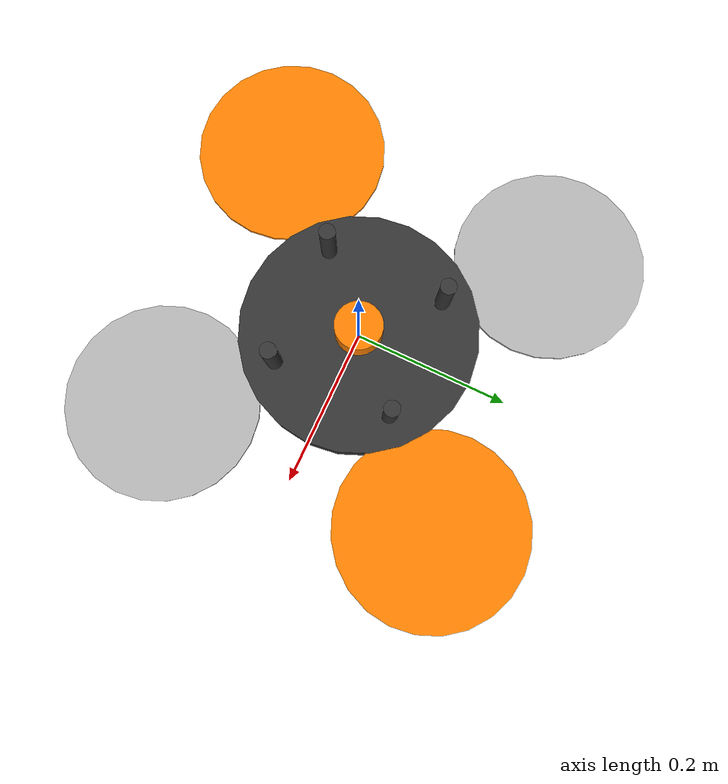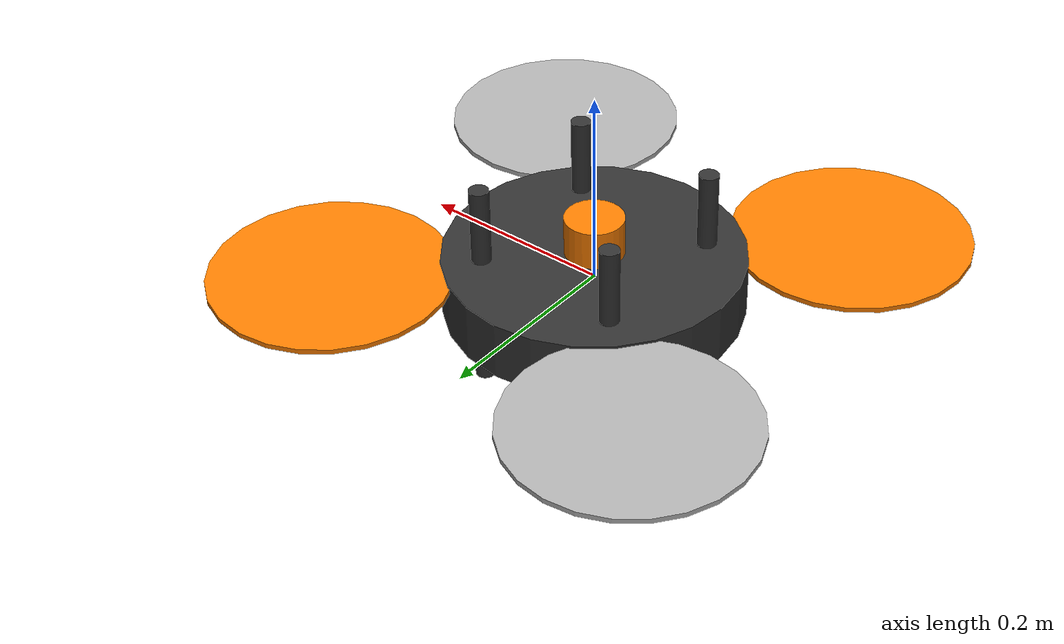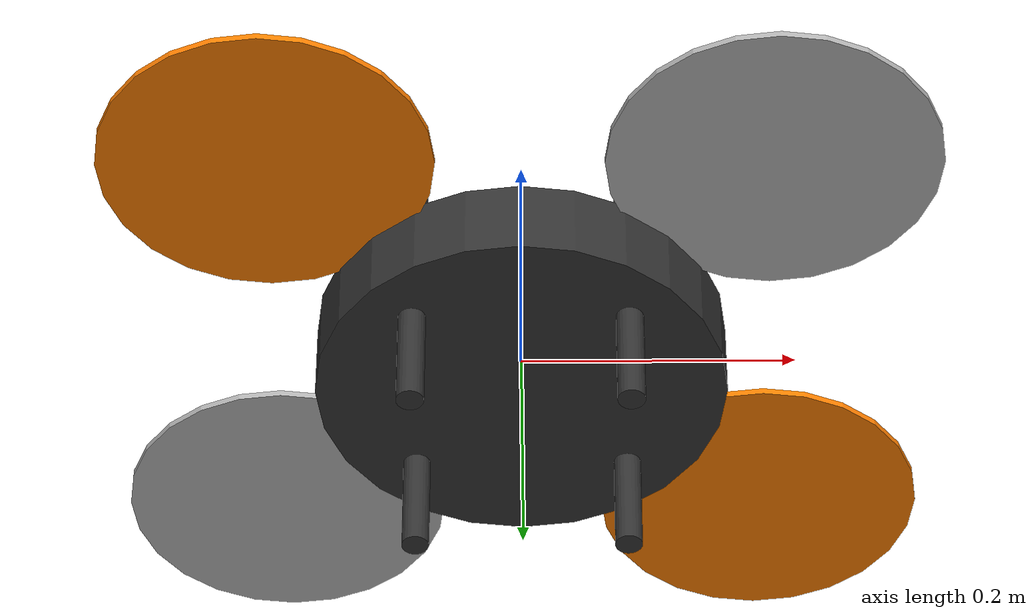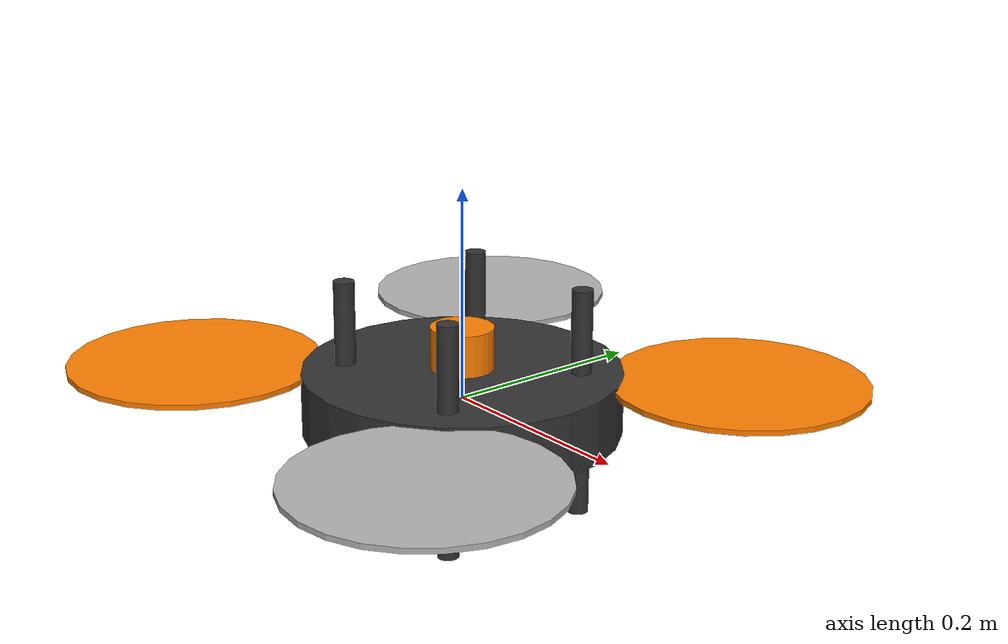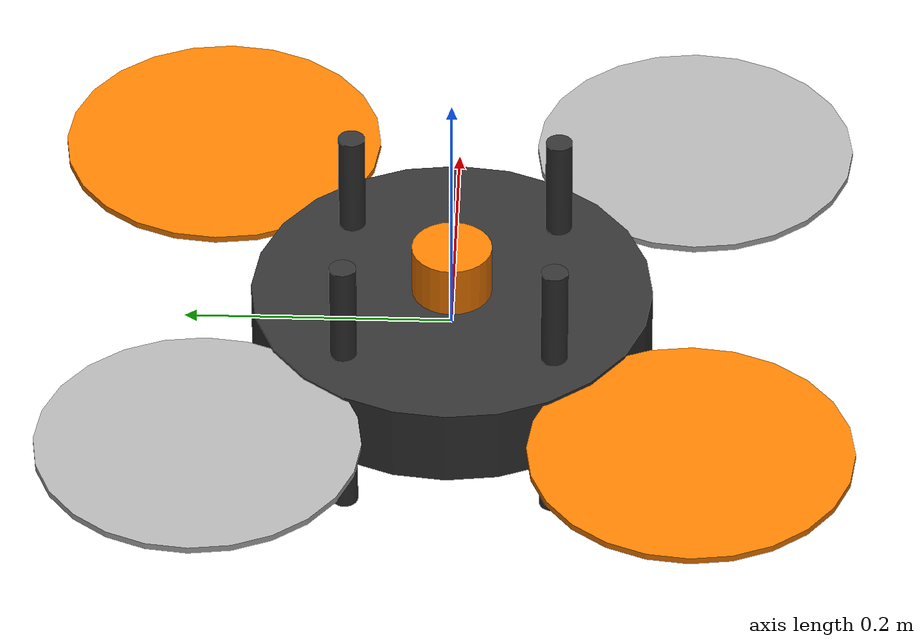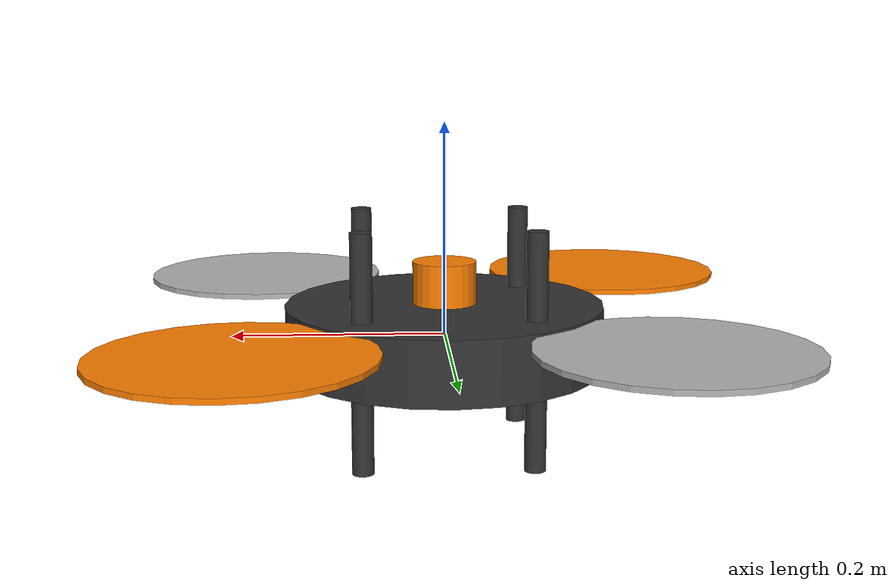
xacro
<?xml version="1.0"?>
<robot name="quadrotor" xmlns:xacro="http://www.ros.org/wiki/xacro">

  <!-- ======================================================
       PROPERTIES
  ====================================================== -->
  <xacro:property name="body_mass"   value="1.5"/>
  <xacro:property name="body_radius" value="0.15"/>
  <xacro:property name="body_length" value="0.06"/>

  <xacro:property name="arm_mass"    value="0.05"/>
  <xacro:property name="arm_length"  value="0.22"/>
  <xacro:property name="arm_radius"  value="0.01"/>

  <xacro:property name="rotor_mass"  value="0.01"/>
  <xacro:property name="rotor_radius" value="0.12"/>

  <!-- ======================================================
       MATERIALS
  ====================================================== -->
  <material name="dark_grey">
    <color rgba="0.2 0.2 0.2 1.0"/>
  </material>
  <material name="orange">
    <color rgba="1.0 0.5 0.0 1.0"/>
  </material>
  <material name="light_grey">
    <color rgba="0.7 0.7 0.7 1.0"/>
  </material>

  <!-- ======================================================
       MACROS
  ====================================================== -->

  <!-- Rotor macro -->
  <xacro:macro name="rotor" params="name x y z color">
    <link name="${name}">
      <visual>
        <origin xyz="0 0 0" rpy="0 0 0"/>
        <geometry>
          <cylinder radius="${rotor_radius}" length="0.005"/>
        </geometry>
        <material name="${color}"/>
      </visual>
      <collision>
        <origin xyz="0 0 0" rpy="0 0 0"/>
        <geometry>
          <cylinder radius="${rotor_radius}" length="0.005"/>
        </geometry>
      </collision>
      <inertial>
        <mass value="${rotor_mass}"/>
        <inertia ixx="0.0001" ixy="0" ixz="0"
                 iyy="0.0001" iyz="0"
                 izz="0.0002"/>
      </inertial>
    </link>
    <joint name="${name}_joint" type="fixed">
      <parent link="base_link"/>
      <child  link="${name}"/>
      <origin xyz="${x} ${y} ${z}" rpy="0 0 0"/>
    </joint>
  </xacro:macro>

  <!-- Arm macro -->
  <xacro:macro name="arm" params="name roll pitch yaw">
    <link name="${name}">
      <visual>
        <origin xyz="${arm_length/2} 0 0" rpy="0 0 0"/>
        <geometry>
          <cylinder radius="${arm_radius}" length="${arm_length}"/>
        </geometry>
        <material name="dark_grey"/>
      </visual>
      <inertial>
        <mass value="${arm_mass}"/>
        <inertia ixx="0.00001" ixy="0" ixz="0"
                 iyy="0.0001"  iyz="0"
                 izz="0.0001"/>
      </inertial>
    </link>
    <joint name="${name}_joint" type="fixed">
      <parent link="base_link"/>
      <child  link="${name}"/>
      <origin xyz="0 0 0" rpy="${roll} ${pitch} ${yaw}"/>
    </joint>
  </xacro:macro>

  <!-- ======================================================
       BASE LINK (drone body)
  ====================================================== -->
  <link name="base_link">
    <visual>
      <origin xyz="0 0 0" rpy="0 0 0"/>
      <geometry>
        <cylinder radius="${body_radius}" length="${body_length}"/>
      </geometry>
      <material name="dark_grey"/>
    </visual>
    <collision>
      <origin xyz="0 0 0" rpy="0 0 0"/>
      <geometry>
        <cylinder radius="${body_radius}" length="${body_length}"/>
      </geometry>
    </collision>
    <inertial>
      <mass value="${body_mass}"/>
      <inertia ixx="0.0083" ixy="0" ixz="0"
               iyy="0.0083" iyz="0"
               izz="0.0165"/>
    </inertial>
  </link>

  <!-- ======================================================
       ARMS  (4 arms at 45°, 135°, 225°, 315°)
  ====================================================== -->
  <xacro:arm name="arm_fl" roll="0" pitch="0" yaw="0.785"/>
  <xacro:arm name="arm_fr" roll="0" pitch="0" yaw="-0.785"/>
  <xacro:arm name="arm_rl" roll="0" pitch="0" yaw="2.356"/>
  <xacro:arm name="arm_rr" roll="0" pitch="0" yaw="-2.356"/>

  <!-- ======================================================
       ROTORS
  ====================================================== -->
  <xacro:rotor name="rotor_fl" x=" 0.18"  y=" 0.18"  z="0.025" color="orange"/>
  <xacro:rotor name="rotor_fr" x=" 0.18"  y="-0.18"  z="0.025" color="light_grey"/>
  <xacro:rotor name="rotor_rl" x="-0.18"  y=" 0.18"  z="0.025" color="light_grey"/>
  <xacro:rotor name="rotor_rr" x="-0.18"  y="-0.18"  z="0.025" color="orange"/>

  <!-- ======================================================
       IMU LINK
  ====================================================== -->
  <link name="imu_link">
    <inertial>
      <mass value="0.001"/>
      <inertia ixx="0.000001" ixy="0" ixz="0"
               iyy="0.000001" iyz="0"
               izz="0.000001"/>
    </inertial>
  </link>
  <joint name="imu_joint" type="fixed">
    <parent link="base_link"/>
    <child  link="imu_link"/>
    <origin xyz="0 0 0" rpy="0 0 0"/>
  </joint>

  <!-- ======================================================
       LIDAR LINK  (2D laser scanner, mounted on top)
  ====================================================== -->
  <link name="laser_link">
    <visual>
      <origin xyz="0 0 0" rpy="0 0 0"/>
      <geometry>
        <cylinder radius="0.03" length="0.04"/>
      </geometry>
      <material name="orange"/>
    </visual>
    <collision>
      <geometry>
        <cylinder radius="0.03" length="0.04"/>
      </geometry>
    </collision>
    <inertial>
      <mass value="0.05"/>
      <inertia ixx="0.000001" ixy="0" ixz="0"
               iyy="0.000001" iyz="0"
               izz="0.000001"/>
    </inertial>
  </link>
  <joint name="laser_joint" type="fixed">
    <parent link="base_link"/>
    <child  link="laser_link"/>
    <origin xyz="0 0 0.05" rpy="0 0 0"/>
  </joint>

  <!-- ======================================================
       GAZEBO PLUGINS
  ====================================================== -->

  <!-- IMU plugin -->
  <gazebo reference="imu_link">
    <sensor name="imu_sensor" type="imu">
      <always_on>true</always_on>
      <update_rate>100</update_rate>
      <plugin name="imu_plugin" filename="libgazebo_ros_imu_sensor.so">
        <ros>
          <remapping>~/out:=imu/data</remapping>
        </ros>
        <initial_orientation_as_reference>false</initial_orientation_as_reference>
      </plugin>
    </sensor>
  </gazebo>

  <!-- 2D Lidar plugin -->
  <gazebo reference="laser_link">
    <sensor name="laser_sensor" type="ray">
      <always_on>true</always_on>
      <update_rate>10</update_rate>
      <ray>
        <scan>
          <horizontal>
            <samples>360</samples>
            <resolution>1</resolution>
            <min_angle>-3.14159</min_angle>
            <max_angle> 3.14159</max_angle>
          </horizontal>
        </scan>
        <range>
          <min>0.12</min>
          <max>10.0</max>
          <resolution>0.01</resolution>
        </range>
        <noise>
          <type>gaussian</type>
          <mean>0.0</mean>
          <stddev>0.01</stddev>
        </noise>
      </ray>
      <plugin name="laser_plugin" filename="libgazebo_ros_ray_sensor.so">
        <ros>
          <remapping>~/out:=scan</remapping>
        </ros>
        <output_type>sensor_msgs/LaserScan</output_type>
        <frame_name>laser_link</frame_name>
      </plugin>
    </sensor>
  </gazebo>

  <!-- Planar move plugin (simulates drone horizontal flight) -->
  <gazebo>
    <plugin name="planar_move" filename="libgazebo_ros_planar_move.so">
      <ros>
        <remapping>cmd_vel:=cmd_vel</remapping>
        <remapping>odom:=odom</remapping>
      </ros>
      <update_rate>20</update_rate>
      <publish_rate>20</publish_rate>
      <publish_odom>true</publish_odom>
      <publish_odom_tf>true</publish_odom_tf>
      <odometry_frame>odom</odometry_frame>
      <robot_base_frame>base_link</robot_base_frame>
    </plugin>
  </gazebo>

</robot>
